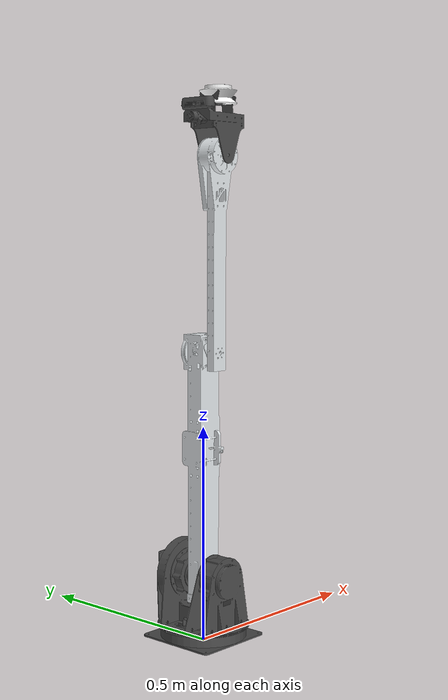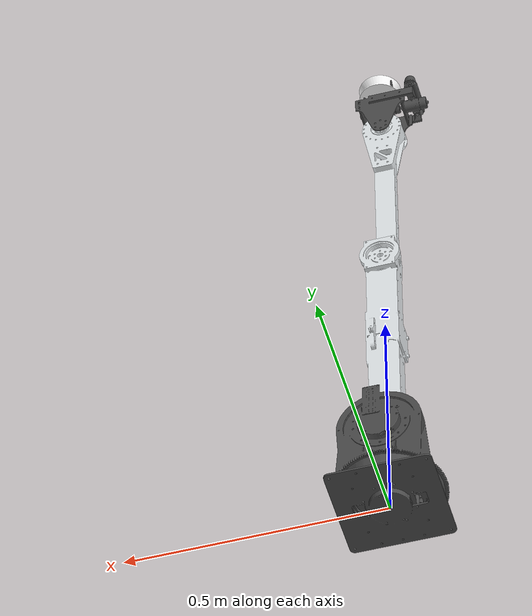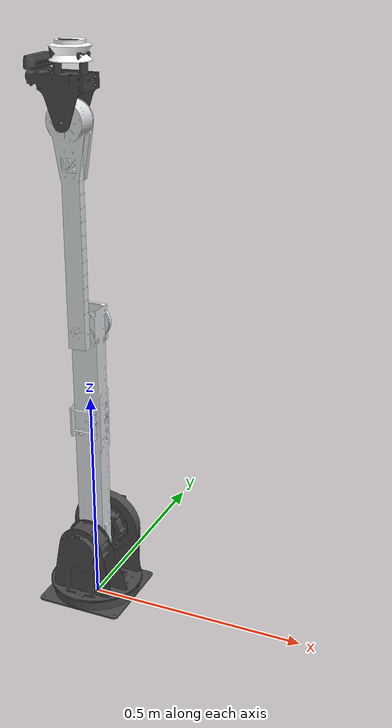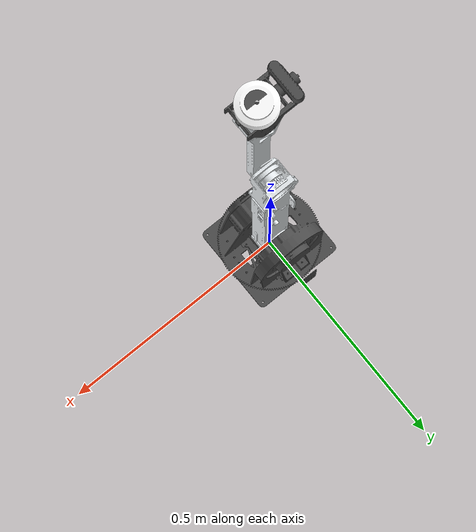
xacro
<?xml version="1.0"?>
<robot xmlns:xacro="http://www.ros.org/wiki/xacro" name="robotic_arm">
    <xacro:arg name="initial_positions_file" default="initial_positions.yaml" />

    <!-- Import robotic_arm urdf file -->
    <xacro:include filename="$(find robotic_arm)/urdf/robotic_arm.urdf" />

    <!-- ros2_control is defined in the main URDF (arm_hw). Do not add a second system here. -->

</robot>

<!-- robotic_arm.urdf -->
<robot
  name="robotic_arm">

  <ros2_control name="arm_hw" type="system">
    <hardware>
    <!-- 自己编写控制器软件包的命名空间和类名 -->
      <plugin>mycontroller/MyControl</plugin>
    </hardware>

    <joint name="joint1">
      <command_interface name="position"/>
      <command_interface name="velocity"/>
      <command_interface name="effort"/>
      <state_interface name="position"/>
      <state_interface name="velocity"/>
      <state_interface name="effort"/>
    </joint>

    <joint name="joint2">
      <command_interface name="position"/>
      <command_interface name="velocity"/>
      <command_interface name="effort"/>
      <state_interface name="position"/>
      <state_interface name="velocity"/>
      <state_interface name="effort"/>
    </joint>

    <joint name="joint3">
      <command_interface name="position"/>
      <command_interface name="velocity"/>
      <command_interface name="effort"/>
      <state_interface name="position"/>
      <state_interface name="velocity"/>
      <state_interface name="effort"/>
    </joint>

    <joint name="joint4">
      <command_interface name="position"/>
      <command_interface name="velocity"/>
      <command_interface name="effort"/>
      <state_interface name="position"/>
      <state_interface name="velocity"/>
      <state_interface name="effort"/>
    </joint>

    <joint name="joint5">
      <command_interface name="position"/>
      <command_interface name="velocity"/>
      <command_interface name="effort"/>
      <state_interface name="position"/>
      <state_interface name="velocity"/>
      <state_interface name="effort"/>
    </joint>

    <joint name="joint6">
      <command_interface name="position"/>
      <command_interface name="velocity"/>
      <command_interface name="effort"/>
      <state_interface name="position"/>
      <state_interface name="velocity"/>
      <state_interface name="effort"/>
    </joint>

</ros2_control>
  <!-- 虚拟根链接，解决KDL根链接惯量问题 -->
  <link name="world"/>
  <joint name="world_to_base" type="fixed">
    <parent link="world"/>
    <child link="base_link"/>
    <origin xyz="0 0 0" rpy="0 0 0"/>
  </joint>
  <link
    name="base_link">
    <inertial>
      <origin
        xyz="-0.0091691 0.00025382 0.018962"
        rpy="0 0 0" />
      <mass
        value="1.0998" />
      <inertia
        ixx="0.0018714"
        ixy="5.0546E-06"
        ixz="8.4992E-08"
        iyy="0.0021258"
        iyz="1.3828E-07"
        izz="0.0039568" />
    </inertial>
    <visual>
      <origin
        xyz="0 0 0"
        rpy="0 0 0" />
      <geometry>
        <mesh
          filename="package://robotic_arm/meshes/base_link.STL" />
      </geometry>
      <material
        name="">
        <color
          rgba="0.29412 0.29412 0.29412 1" />
      </material>
    </visual>
    <collision>
      <origin
        xyz="0 0 0"
        rpy="0 0 0" />
      <geometry>
        <mesh
          filename="package://robotic_arm/meshes/base_link.STL" />
      </geometry>
    </collision>
  </link>
  <link
    name="link1">
    <inertial>
      <origin
        xyz="7.43358623475285E-06 0.023889111022454 0.0983534461817423"
        rpy="0 0 0" />
      <mass
        value="2.34956808405639" />
      <inertia
        ixx="0.00573875484676502"
        ixy="-2.00357397760014E-07"
        ixz="1.05499338060549E-06"
        iyy="0.0081459637209077"
        iyz="2.40543211978046E-05"
        izz="0.00840985861180689" />
    </inertial>
    <visual>
      <origin
        xyz="0 0 0"
        rpy="0 0 0" />
      <geometry>
        <mesh
          filename="package://robotic_arm/meshes/link1.STL" />
      </geometry>
      <material
        name="">
        <color
          rgba="0.294117647058824 0.294117647058824 0.294117647058824 1" />
      </material>
    </visual>
    <collision>
      <origin
        xyz="0 0 0"
        rpy="0 0 0" />
      <geometry>
        <mesh
          filename="package://robotic_arm/meshes/link1.STL" />
      </geometry>
    </collision>
  </link>
  <joint
    name="joint1"
    type="revolute">
    <origin
      xyz="0 0 0"
      rpy="0 0 0" />
    <parent
      link="base_link" />
    <child
      link="link1" />
    <axis
      xyz="0 0 1" />
    <limit
      lower="-6.283185307"
      upper="6.283185307"
      effort="50"
      velocity="10" />
  </joint>
  <link
    name="link2">
    <inertial>
      <origin
        xyz="0.31324601008515 -0.000831742439412309 0.0364273369229759"
        rpy="0 0 0" />
      <mass
        value="1.23727124080295" />
      <inertia
        ixx="0.000574698570546715"
        ixy="6.7861884473848E-07"
        ixz="6.52827071680354E-05"
        iyy="0.0139530728630749"
        iyz="1.73022939218074E-06"
        izz="0.0142113056179225" />
    </inertial>
    <visual>
      <origin
        xyz="0 0 0"
        rpy="0 0 0" />
      <geometry>
        <mesh
          filename="package://robotic_arm/meshes/link2.STL" />
      </geometry>
      <material
        name="">
        <color
          rgba="0.898039215686275 0.917647058823529 0.929411764705882 1" />
      </material>
    </visual>
    <collision>
      <origin
        xyz="0 0 0"
        rpy="0 0 0" />
      <geometry>
        <mesh
          filename="package://robotic_arm/meshes/link2.STL" />
      </geometry>
    </collision>
  </link>
  <joint
    name="joint2"
    type="revolute">
    <origin
      xyz="0 0.03675 0.153"
      rpy="1.5708 -1.5708 0" />
    <parent
      link="link1" />
    <child
      link="link2" />
    <axis
      xyz="0 0 1" />
    <limit
      lower="-1.570796327"
      upper="1.570796327"
      effort="50"
      velocity="10" />
  </joint>
  <link
    name="link3">
    <inertial>
      <origin
        xyz="0.271920716707995 -0.000176719212418436 -0.0120138921627069"
        rpy="0 0 0" />
      <mass
        value="0.370266089775016" />
      <inertia
        ixx="0.000130367133133288"
        ixy="6.8904580007452E-07"
        ixz="-1.94899942108088E-06"
        iyy="0.0026767489060302"
        iyz="-1.73328221772745E-07"
        izz="0.00278032819630172" />
    </inertial>
    <visual>
      <origin
        xyz="0 0 0"
        rpy="0 0 0" />
      <geometry>
        <mesh
          filename="package://robotic_arm/meshes/link3.STL" />
      </geometry>
      <material
        name="">
        <color
          rgba="0.898039215686275 0.917647058823529 0.929411764705882 1" />
      </material>
    </visual>
    <collision>
      <origin
        xyz="0 0 0"
        rpy="0 0 0" />
      <geometry>
        <mesh
          filename="package://robotic_arm/meshes/link3.STL" />
      </geometry>
    </collision>
  </link>
  <joint
    name="joint3"
    type="revolute">
    <origin
      xyz="0.52 0 0.08565"
      rpy="0 0 0" />
    <parent
      link="link2" />
    <child
      link="link3" />
    <axis
      xyz="0 0 1" />
    <limit
      lower="-3.141592654"
      upper="3.141592654"
      effort="50"
      velocity="10" />
  </joint>
  <link
    name="link4">
    <inertial>
      <origin
        xyz="0.101739291148925 0.0561668504993356 -0.0293841566997596"
        rpy="0 0 0" />
      <mass
        value="1.54177209165349" />
      <inertia
        ixx="0.000889042299025289"
        ixy="-2.00979301144906E-06"
        ixz="1.14560649951194E-05"
        iyy="0.000902753866766143"
        iyz="4.25131749155067E-08"
        izz="0.000270000371052934" />
    </inertial>
    <visual>
      <origin
        xyz="0 0 0"
        rpy="0 0 0" />
      <geometry>
        <mesh
          filename="package://robotic_arm/meshes/link4.STL" />
      </geometry>
      <material
        name="">
        <color
          rgba="0.294117647058824 0.294117647058824 0.294117647058824 1" />
      </material>
    </visual>
    <collision>
      <origin
        xyz="0 0 0"
        rpy="0 0 0" />
      <geometry>
        <mesh
          filename="package://robotic_arm/meshes/link4.STL" />
      </geometry>
    </collision>
  </link>
  <joint
    name="joint4"
    type="revolute">
    <origin
      xyz="0.436 0 0.0225"
      rpy="0 0 0" />
    <parent
      link="link3" />
    <child
      link="link4" />
    <axis
      xyz="0 0 1" />
    <limit
      lower="-3.141592654"
      upper="3.141592654"
      effort="50"
      velocity="10" />
  </joint>
  <link
    name="link5">
    <inertial>
      <origin
        xyz="0.0486576553457728 0.00239487174403753 0.00012705522061713"
        rpy="0 0 0" />
      <mass
        value="0.0698721570199944" />
      <inertia
        ixx="1.56377401050224E-05"
        ixy="-2.12604880279856E-07"
        ixz="-4.57425787908851E-21"
        iyy="1.97786334057882E-05"
        iyz="2.67416707819328E-21"
        izz="2.26007956299793E-05" />
    </inertial>
    <visual>
      <origin
        xyz="0 0 0"
        rpy="0 0 0" />
      <geometry>
        <mesh
          filename="package://robotic_arm/meshes/link5.STL" />
      </geometry>
      <material
        name="">
        <color
          rgba="0.294117647058824 0.294117647058824 0.294117647058824 1" />
      </material>
    </visual>
    <collision>
      <origin
        xyz="0 0 0"
        rpy="0 0 0" />
      <geometry>
        <mesh
          filename="package://robotic_arm/meshes/link5.STL" />
      </geometry>
    </collision>
  </link>
  <joint
    name="joint5"
    type="revolute">
    <origin
      xyz="0.07761 -0.0058889 -0.03035"
      rpy="-1.5708 0 0" />
    <parent
      link="link4" />
    <child
      link="link5" />
    <axis
      xyz="0 0 1" />
    <limit
      lower="-0.610865238"
      upper="0.610865238"
      effort="50"
      velocity="10" />
  </joint>
  <link
    name="link6">
    <inertial>
      <origin
        xyz="1.1369377661552E-14 3.51232931627976E-13 0.0193009014981094"
        rpy="0 0 0" />
      <mass
        value="0.128099358994803" />
      <inertia
        ixx="6.47696731838478E-05"
        ixy="9.75275553763421E-22"
        ixz="-2.32600096593007E-21"
        iyy="6.47696731838478E-05"
        iyz="-1.86347248395946E-20"
        izz="9.58412456894771E-05" />
    </inertial>
    <visual>
      <origin
        xyz="0 0 0"
        rpy="0 0 0" />
      <geometry>
        <mesh
          filename="package://robotic_arm/meshes/link6.STL" />
      </geometry>
      <material
        name="">
        <color
          rgba="1 1 1 1" />
      </material>
    </visual>
    <collision>
      <origin
        xyz="0 0 0"
        rpy="0 0 0" />
      <geometry>
        <mesh
          filename="package://robotic_arm/meshes/link6.STL" />
      </geometry>
    </collision>
  </link>
  <joint
    name="joint6"
    type="revolute">
    <origin
      xyz="0.073796 0.0036822 8.8922E-05"
      rpy="0 -1.5708 0" />
    <parent
      link="link5" />
    <child
      link="link6" />
    <axis
      xyz="0 0 1" />
    <limit
      lower="-3.14159"
      upper="3.14159"
      effort="50"
      velocity="10" />
  </joint>
</robot>
